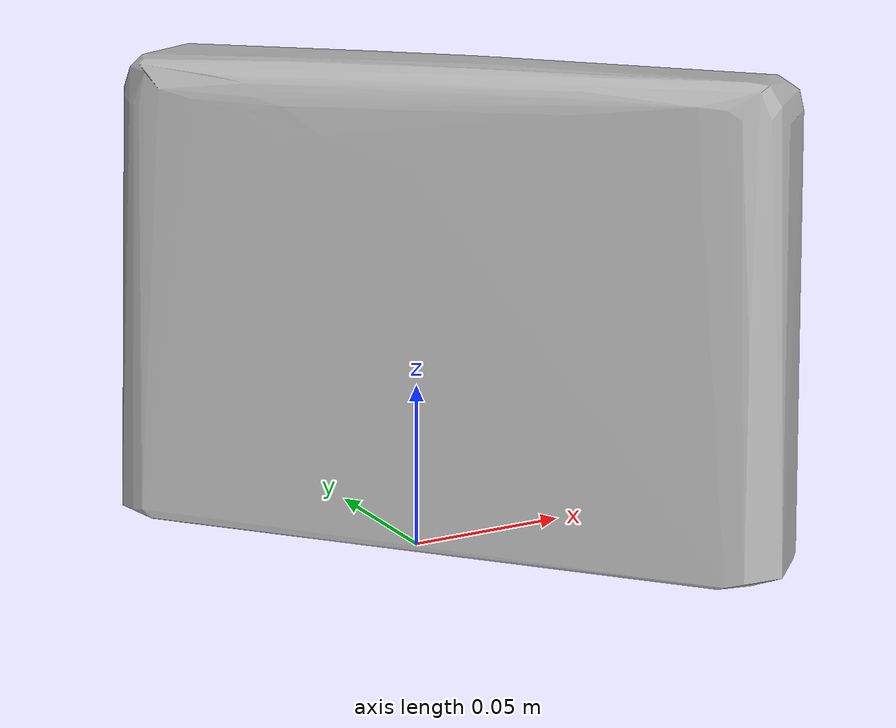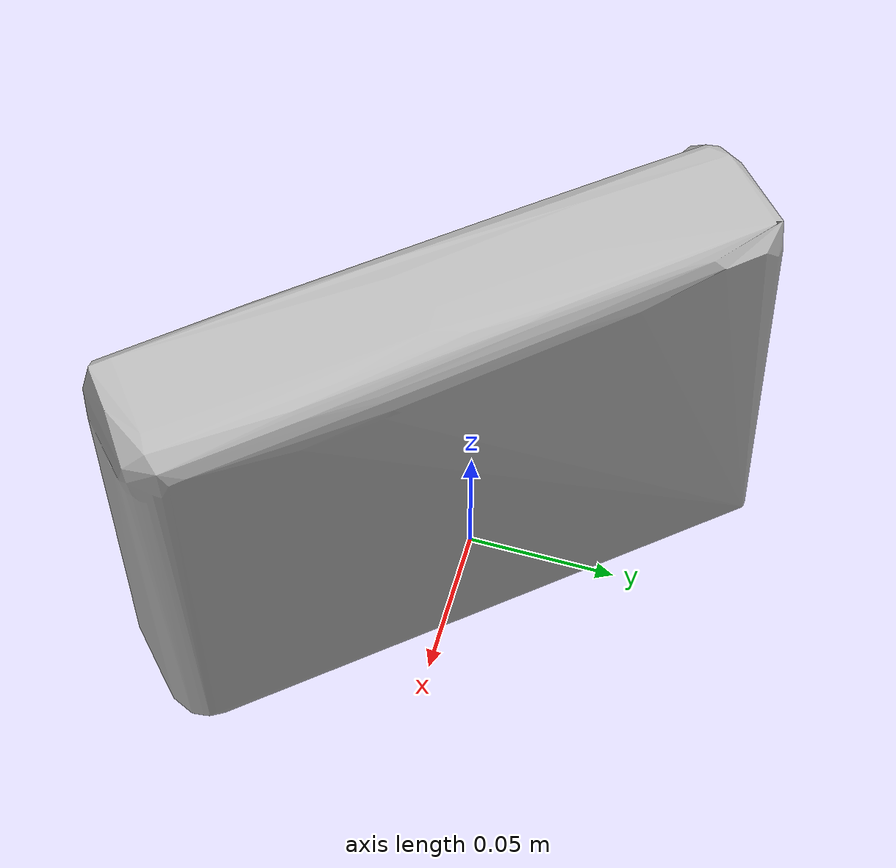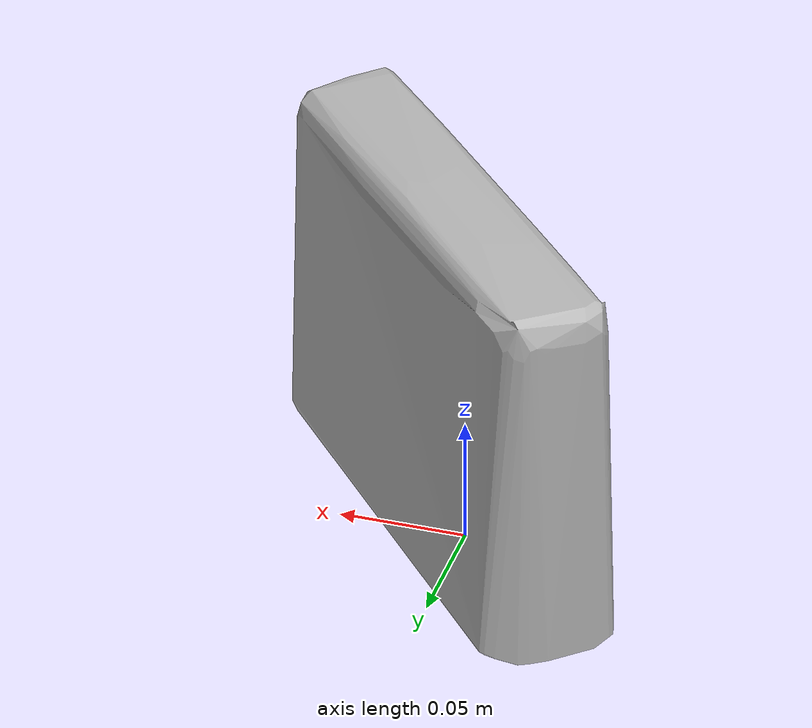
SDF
<?xml version='1.0'?>
<sdf version="1.4">
  <model name="nutrigrain_strawberry_greek_yogurt">
    <static>false</static>
    <link name="link">
      <inertial>
        <pose>0.00838355905884301 -0.004087912695158365 0.07383805755475648 1.5576560752125674 -0.01017618422084993 0.704297838472514</pose>
        <mass>0.1391845024865744</mass>
        <inertia>
          <ixx>0.0006907687026804131</ixx>
          <ixy>-1.1434386286322948e-21</ixy>
          <ixz>1.71456159343242e-19</ixz>
          <iyy>0.0004913796890973605</iyy>
          <iyz>2.091409226696265e-21</iyz>
          <izz>0.00025481633746528905</izz>
        </inertia>
      </inertial>
      <collision name="collision">
        <geometry>
          <mesh>
            <!-- Use a downsampled mesh for collisions -->
            <uri>model:///nutrigrain_strawberry_greek_yogurt/nutrigrain_strawberry_greek_yogurt_250_collision.obj</uri>
	        </mesh>
        </geometry>
        <surface>
      </surface>
      </collision>
      <visual name="visual">
        <geometry>
          <mesh>
            <uri>model:///nutrigrain_strawberry_greek_yogurt/optimized_tsdf_texture_mapped_mesh.obj</uri>
	        </mesh>
        </geometry>
        <material>
          <script>
            <uri>model:///nutrigrain_strawberry_greek_yogurt/nutrigrain_strawberry_greek_yogurt.material</uri>
            <name>nutrigrain_strawberry_greek_yogurt</name>
          </script>
        </material>
      </visual>
    </link>
  </model>
</sdf>
